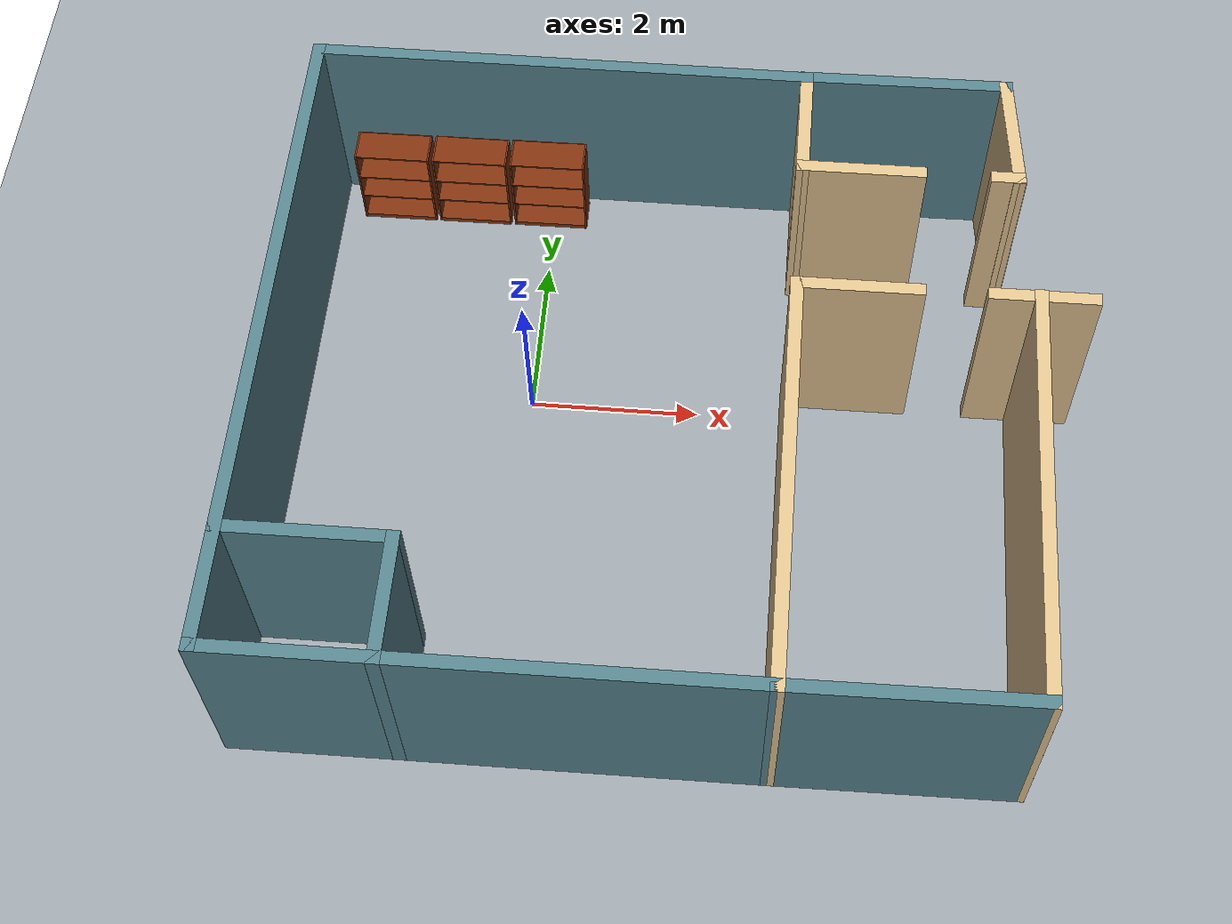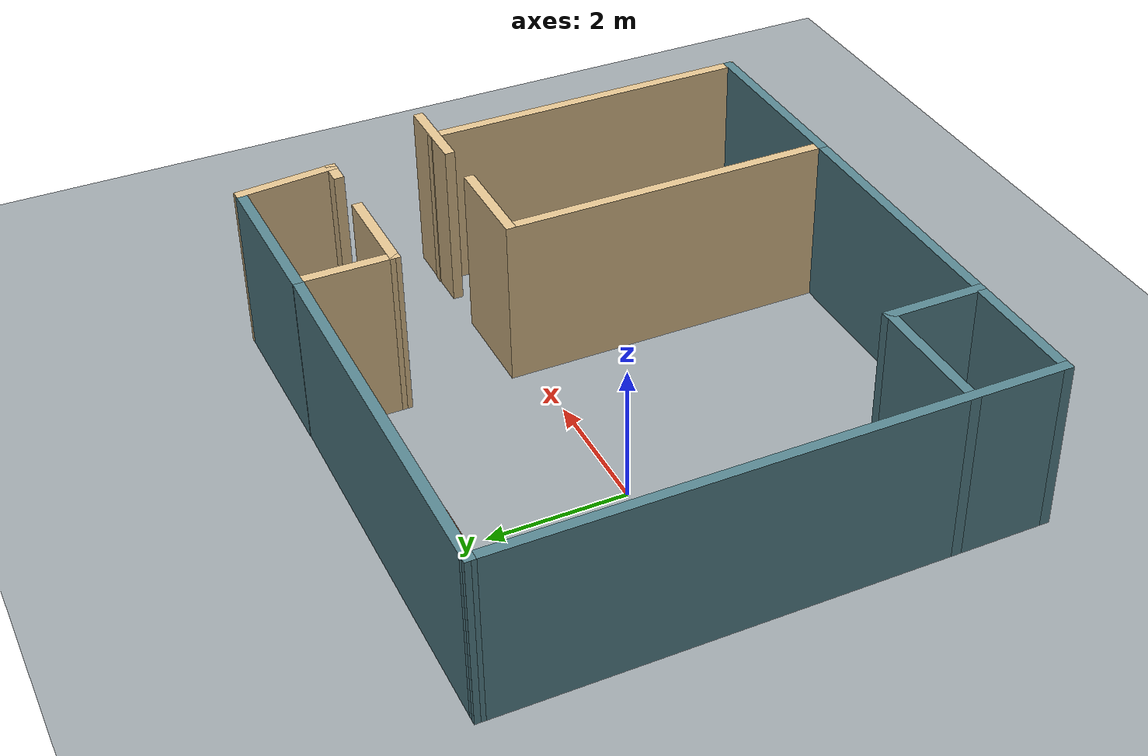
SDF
<sdf version="1.6">
 <world name="default">
  <model name="ground_plane_0">
   <static>1</static>
   <link name="link">
    <collision name="collision">
     <geometry><plane><normal>0 0 1</normal><size>100 100</size></plane></geometry>
     <surface><friction><ode><mu>100</mu><mu2>50</mu2></ode></friction></surface>
    </collision>
    <visual name="visual">
     <cast_shadows>0</cast_shadows>
     <geometry><plane><normal>0 0 1</normal><size>100 100</size></plane></geometry>
     <material>
      <ambient>0.42 0.44 0.46 1</ambient>
      <diffuse>0.62 0.65 0.67 1</diffuse>
      <specular>0.08 0.08 0.08 1</specular>
      <emissive>0 0 0 1</emissive>
     </material>
    </visual>
    <velocity_decay><linear>0</linear><angular>0</angular></velocity_decay>
   </link>
   <pose>0.497681 0 0 0 -0 0</pose>
  </model>
  <model name="inco_planta_baja_0">
   <link name="Wall_10">
    <pose>-3.93462 3.232 0 0 0 -1.5727</pose>
    <visual name="Wall_10_Visual">
     <pose>0 0 1.25 0 -0 0</pose>
     <geometry><box><size>1.48163 0.15 2.5</size></box></geometry>
     <material>
      <ambient>0.55 0.48 0.36 1</ambient>
      <diffuse>0.88 0.76 0.56 1</diffuse>
      <specular>0.05 0.05 0.05 1</specular>
      <emissive>0 0 0 1</emissive>
     </material>
    </visual>
    <collision name="Wall_10_Collision">
     <pose>0 0 1.25 0 -0 0</pose>
     <geometry><box><size>1.48163 0.15 2.5</size></box></geometry>
     <surface>
      <friction>
       <ode><mu>1</mu><mu2>1</mu2><fdir1>0 0 0</fdir1><slip1>0</slip1><slip2>0</slip2></ode>
       <torsional>
        <coefficient>1</coefficient>
        <patch_radius>0</patch_radius>
        <surface_radius>0</surface_radius>
        <use_patch_radius>1</use_patch_radius>
        <ode><slip>0</slip></ode>
       </torsional>
      </friction>
      <bounce><restitution_coefficient>0</restitution_coefficient><threshold>1e+06</threshold></bounce>
      <contact>
       <collide_without_contact>0</collide_without_contact>
       <collide_without_contact_bitmask>1</collide_without_contact_bitmask>
       <collide_bitmask>1</collide_bitmask>
       <ode>
        <soft_cfm>0</soft_cfm>
        <soft_erp>0.2</soft_erp>
        <kp>1e+13</kp>
        <kd>1</kd>
        <max_vel>0.01</max_vel>
        <min_depth>0</min_depth>
       </ode>
       <bullet>
        <split_impulse>1</split_impulse>
        <split_impulse_penetration_threshold>-0.01</split_impulse_penetration_threshold>
        <soft_cfm>0</soft_cfm>
        <soft_erp>0.2</soft_erp>
        <kp>1e+13</kp>
        <kd>1</kd>
       </bullet>
      </contact>
     </surface>
    </collision>
   </link>
   <link name="Wall_12">
    <pose>-3.26089 2.56618 0 0 -0 0</pose>
    <visual name="Wall_12_Visual">
     <pose>0 0 1.25 0 -0 0</pose>
     <geometry><box><size>1.5 0.15 2.5</size></box></geometry>
     <material>
      <ambient>0.55 0.48 0.36 1</ambient>
      <diffuse>0.88 0.76 0.56 1</diffuse>
      <specular>0.05 0.05 0.05 1</specular>
      <emissive>0 0 0 1</emissive>
     </material>
    </visual>
    <collision name="Wall_12_Collision">
     <pose>0 0 1.25 0 -0 0</pose>
     <geometry><box><size>1.5 0.15 2.5</size></box></geometry>
     <surface>
      <friction>
       <ode><mu>1</mu><mu2>1</mu2><fdir1>0 0 0</fdir1><slip1>0</slip1><slip2>0</slip2></ode>
       <torsional>
        <coefficient>1</coefficient>
        <patch_radius>0</patch_radius>
        <surface_radius>0</surface_radius>
        <use_patch_radius>1</use_patch_radius>
        <ode><slip>0</slip></ode>
       </torsional>
      </friction>
      <bounce><restitution_coefficient>0</restitution_coefficient><threshold>1e+06</threshold></bounce>
      <contact>
       <collide_without_contact>0</collide_without_contact>
       <collide_without_contact_bitmask>1</collide_without_contact_bitmask>
       <collide_bitmask>1</collide_bitmask>
       <ode>
        <soft_cfm>0</soft_cfm>
        <soft_erp>0.2</soft_erp>
        <kp>1e+13</kp>
        <kd>1</kd>
        <max_vel>0.01</max_vel>
        <min_depth>0</min_depth>
       </ode>
       <bullet>
        <split_impulse>1</split_impulse>
        <split_impulse_penetration_threshold>-0.01</split_impulse_penetration_threshold>
        <soft_cfm>0</soft_cfm>
        <soft_erp>0.2</soft_erp>
        <kp>1e+13</kp>
        <kd>1</kd>
       </bullet>
      </contact>
     </surface>
    </collision>
   </link>
   <link name="Wall_129">
    <pose>-1.23779 -1.49163 0 0 0 -1.5708</pose>
    <visual name="Wall_129_Visual">
     <pose>0 0 1.25 0 -0 0</pose>
     <geometry><box><size>5 0.15 2.5</size></box></geometry>
     <material>
      <ambient>0.55 0.48 0.36 1</ambient>
      <diffuse>0.88 0.76 0.56 1</diffuse>
      <specular>0.05 0.05 0.05 1</specular>
      <emissive>0 0 0 1</emissive>
     </material>
    </visual>
    <collision name="Wall_129_Collision">
     <pose>0 0 1.25 0 -0 0</pose>
     <geometry><box><size>5 0.15 2.5</size></box></geometry>
     <surface>
      <friction>
       <ode><mu>1</mu><mu2>1</mu2><fdir1>0 0 0</fdir1><slip1>0</slip1><slip2>0</slip2></ode>
       <torsional>
        <coefficient>1</coefficient>
        <patch_radius>0</patch_radius>
        <surface_radius>0</surface_radius>
        <use_patch_radius>1</use_patch_radius>
        <ode><slip>0</slip></ode>
       </torsional>
      </friction>
      <bounce><restitution_coefficient>0</restitution_coefficient><threshold>1e+06</threshold></bounce>
      <contact>
       <collide_without_contact>0</collide_without_contact>
       <collide_without_contact_bitmask>1</collide_without_contact_bitmask>
       <collide_bitmask>1</collide_bitmask>
       <ode>
        <soft_cfm>0</soft_cfm>
        <soft_erp>0.2</soft_erp>
        <kp>1e+13</kp>
        <kd>1</kd>
        <max_vel>0.01</max_vel>
        <min_depth>0</min_depth>
       </ode>
       <bullet>
        <split_impulse>1</split_impulse>
        <split_impulse_penetration_threshold>-0.01</split_impulse_penetration_threshold>
        <soft_cfm>0</soft_cfm>
        <soft_erp>0.2</soft_erp>
        <kp>1e+13</kp>
        <kd>1</kd>
       </bullet>
      </contact>
     </surface>
    </collision>
   </link>
   <link name="Wall_130">
    <pose>-2.58684 -3.92522 0 0 0 -3.13522</pose>
    <visual name="Wall_130_Visual">
     <pose>0 0 1.25 0 -0 0</pose>
     <geometry><box><size>2.84815 0.15 2.5</size></box></geometry>
     <material>
      <ambient>0.22 0.31 0.34 1</ambient>
      <diffuse>0.34 0.52 0.56 1</diffuse>
      <specular>0.05 0.05 0.05 1</specular>
      <emissive>0 0 0 1</emissive>
     </material>
    </visual>
    <collision name="Wall_130_Collision">
     <pose>0 0 1.25 0 -0 0</pose>
     <geometry><box><size>2.84815 0.15 2.5</size></box></geometry>
     <surface>
      <friction>
       <ode><mu>1</mu><mu2>1</mu2><fdir1>0 0 0</fdir1><slip1>0</slip1><slip2>0</slip2></ode>
       <torsional>
        <coefficient>1</coefficient>
        <patch_radius>0</patch_radius>
        <surface_radius>0</surface_radius>
        <use_patch_radius>1</use_patch_radius>
        <ode><slip>0</slip></ode>
       </torsional>
      </friction>
      <bounce><restitution_coefficient>0</restitution_coefficient><threshold>1e+06</threshold></bounce>
      <contact>
       <collide_without_contact>0</collide_without_contact>
       <collide_without_contact_bitmask>1</collide_without_contact_bitmask>
       <collide_bitmask>1</collide_bitmask>
       <ode>
        <soft_cfm>0</soft_cfm>
        <soft_erp>0.2</soft_erp>
        <kp>1e+13</kp>
        <kd>1</kd>
        <max_vel>0.01</max_vel>
        <min_depth>0</min_depth>
       </ode>
       <bullet>
        <split_impulse>1</split_impulse>
        <split_impulse_penetration_threshold>-0.01</split_impulse_penetration_threshold>
        <soft_cfm>0</soft_cfm>
        <soft_erp>0.2</soft_erp>
        <kp>1e+13</kp>
        <kd>1</kd>
       </bullet>
      </contact>
     </surface>
    </collision>
   </link>
   <link name="Wall_139">
    <pose>-2.75835 3.91357 0 0 -0 0.008489</pose>
    <visual name="Wall_139_Visual">
     <pose>0 0 1.25 0 -0 0</pose>
     <geometry><box><size>2.50008 0.15 2.5</size></box></geometry>
     <material>
      <ambient>0.22 0.31 0.34 1</ambient>
      <diffuse>0.34 0.52 0.56 1</diffuse>
      <specular>0.05 0.05 0.05 1</specular>
      <emissive>0 0 0 1</emissive>
     </material>
    </visual>
    <collision name="Wall_139_Collision">
     <pose>0 0 1.25 0 -0 0</pose>
     <geometry><box><size>2.50008 0.15 2.5</size></box></geometry>
     <surface>
      <friction>
       <ode><mu>1</mu><mu2>1</mu2><fdir1>0 0 0</fdir1><slip1>0</slip1><slip2>0</slip2></ode>
       <torsional>
        <coefficient>1</coefficient>
        <patch_radius>0</patch_radius>
        <surface_radius>0</surface_radius>
        <use_patch_radius>1</use_patch_radius>
        <ode><slip>0</slip></ode>
       </torsional>
      </friction>
      <bounce><restitution_coefficient>0</restitution_coefficient><threshold>1e+06</threshold></bounce>
      <contact>
       <collide_without_contact>0</collide_without_contact>
       <collide_without_contact_bitmask>1</collide_without_contact_bitmask>
       <collide_bitmask>1</collide_bitmask>
       <ode>
        <soft_cfm>0</soft_cfm>
        <soft_erp>0.2</soft_erp>
        <kp>1e+13</kp>
        <kd>1</kd>
        <max_vel>0.01</max_vel>
        <min_depth>0</min_depth>
       </ode>
       <bullet>
        <split_impulse>1</split_impulse>
        <split_impulse_penetration_threshold>-0.01</split_impulse_penetration_threshold>
        <soft_cfm>0</soft_cfm>
        <soft_erp>0.2</soft_erp>
        <kp>1e+13</kp>
        <kd>1</kd>
       </bullet>
      </contact>
     </surface>
    </collision>
   </link>
   <link name="Wall_149">
    <pose>-1.51651 3.24289 0 0 0 -1.47291</pose>
    <visual name="Wall_149_Visual">
     <pose>0 0 1.25 0 -0 0</pose>
     <geometry><box><size>1.51786 0.15 2.5</size></box></geometry>
     <material>
      <ambient>0.55 0.48 0.36 1</ambient>
      <diffuse>0.88 0.76 0.56 1</diffuse>
      <specular>0.05 0.05 0.05 1</specular>
      <emissive>0 0 0 1</emissive>
     </material>
    </visual>
    <collision name="Wall_149_Collision">
     <pose>0 0 1.25 0 -0 0</pose>
     <geometry><box><size>1.51786 0.15 2.5</size></box></geometry>
     <surface>
      <friction>
       <ode><mu>1</mu><mu2>1</mu2><fdir1>0 0 0</fdir1><slip1>0</slip1><slip2>0</slip2></ode>
       <torsional>
        <coefficient>1</coefficient>
        <patch_radius>0</patch_radius>
        <surface_radius>0</surface_radius>
        <use_patch_radius>1</use_patch_radius>
        <ode><slip>0</slip></ode>
       </torsional>
      </friction>
      <bounce><restitution_coefficient>0</restitution_coefficient><threshold>1e+06</threshold></bounce>
      <contact>
       <collide_without_contact>0</collide_without_contact>
       <collide_without_contact_bitmask>1</collide_without_contact_bitmask>
       <collide_bitmask>1</collide_bitmask>
       <ode>
        <soft_cfm>0</soft_cfm>
        <soft_erp>0.2</soft_erp>
        <kp>1e+13</kp>
        <kd>1</kd>
        <max_vel>0.01</max_vel>
        <min_depth>0</min_depth>
       </ode>
       <bullet>
        <split_impulse>1</split_impulse>
        <split_impulse_penetration_threshold>-0.01</split_impulse_penetration_threshold>
        <soft_cfm>0</soft_cfm>
        <soft_erp>0.2</soft_erp>
        <kp>1e+13</kp>
        <kd>1</kd>
       </bullet>
      </contact>
     </surface>
    </collision>
   </link>
   <link name="Wall_15">
    <pose>-7.93589 -3.25882 0 0 -0 1.5708</pose>
    <visual name="Wall_15_Visual">
     <pose>0 0 1.25 0 -0 0</pose>
     <geometry><box><size>1.5 0.15 2.5</size></box></geometry>
     <material>
      <ambient>0.22 0.31 0.34 1</ambient>
      <diffuse>0.34 0.52 0.56 1</diffuse>
      <specular>0.05 0.05 0.05 1</specular>
      <emissive>0 0 0 1</emissive>
     </material>
    </visual>
    <collision name="Wall_15_Collision">
     <pose>0 0 1.25 0 -0 0</pose>
     <geometry><box><size>1.5 0.15 2.5</size></box></geometry>
     <surface>
      <friction>
       <ode><mu>1</mu><mu2>1</mu2><fdir1>0 0 0</fdir1><slip1>0</slip1><slip2>0</slip2></ode>
       <torsional>
        <coefficient>1</coefficient>
        <patch_radius>0</patch_radius>
        <surface_radius>0</surface_radius>
        <use_patch_radius>1</use_patch_radius>
        <ode><slip>0</slip></ode>
       </torsional>
      </friction>
      <bounce><restitution_coefficient>0</restitution_coefficient><threshold>1e+06</threshold></bounce>
      <contact>
       <collide_without_contact>0</collide_without_contact>
       <collide_without_contact_bitmask>1</collide_without_contact_bitmask>
       <collide_bitmask>1</collide_bitmask>
       <ode>
        <soft_cfm>0</soft_cfm>
        <soft_erp>0.2</soft_erp>
        <kp>1e+13</kp>
        <kd>1</kd>
        <max_vel>0.01</max_vel>
        <min_depth>0</min_depth>
       </ode>
       <bullet>
        <split_impulse>1</split_impulse>
        <split_impulse_penetration_threshold>-0.01</split_impulse_penetration_threshold>
        <soft_cfm>0</soft_cfm>
        <soft_erp>0.2</soft_erp>
        <kp>1e+13</kp>
        <kd>1</kd>
       </bullet>
      </contact>
     </surface>
    </collision>
   </link>
   <link name="Wall_16">
    <pose>-8.86089 -2.58382 0 0 -0 3.14159</pose>
    <visual name="Wall_16_Visual">
     <pose>0 0 1.25 0 -0 0</pose>
     <geometry><box><size>2 0.15 2.5</size></box></geometry>
     <material>
      <ambient>0.22 0.31 0.34 1</ambient>
      <diffuse>0.34 0.52 0.56 1</diffuse>
      <specular>0.05 0.05 0.05 1</specular>
      <emissive>0 0 0 1</emissive>
     </material>
    </visual>
    <collision name="Wall_16_Collision">
     <pose>0 0 1.25 0 -0 0</pose>
     <geometry><box><size>2 0.15 2.5</size></box></geometry>
     <surface>
      <friction>
       <ode><mu>1</mu><mu2>1</mu2><fdir1>0 0 0</fdir1><slip1>0</slip1><slip2>0</slip2></ode>
       <torsional>
        <coefficient>1</coefficient>
        <patch_radius>0</patch_radius>
        <surface_radius>0</surface_radius>
        <use_patch_radius>1</use_patch_radius>
        <ode><slip>0</slip></ode>
       </torsional>
      </friction>
      <bounce><restitution_coefficient>0</restitution_coefficient><threshold>1e+06</threshold></bounce>
      <contact>
       <collide_without_contact>0</collide_without_contact>
       <collide_without_contact_bitmask>1</collide_without_contact_bitmask>
       <collide_bitmask>1</collide_bitmask>
       <ode>
        <soft_cfm>0</soft_cfm>
        <soft_erp>0.2</soft_erp>
        <kp>1e+13</kp>
        <kd>1</kd>
        <max_vel>0.01</max_vel>
        <min_depth>0</min_depth>
       </ode>
       <bullet>
        <split_impulse>1</split_impulse>
        <split_impulse_penetration_threshold>-0.01</split_impulse_penetration_threshold>
        <soft_cfm>0</soft_cfm>
        <soft_erp>0.2</soft_erp>
        <kp>1e+13</kp>
        <kd>1</kd>
       </bullet>
      </contact>
     </surface>
    </collision>
   </link>
   <link name="Wall_18">
    <pose>-1.57468 2.56224 0 0 -0 3.14159</pose>
    <visual name="Wall_18_Visual">
     <pose>0 0 1.25 0 -0 0</pose>
     <geometry><box><size>0.4 0.15 2.5</size></box></geometry>
     <material>
      <ambient>0.55 0.48 0.36 1</ambient>
      <diffuse>0.88 0.76 0.56 1</diffuse>
      <specular>0.05 0.05 0.05 1</specular>
      <emissive>0 0 0 1</emissive>
     </material>
    </visual>
    <collision name="Wall_18_Collision">
     <pose>0 0 1.25 0 -0 0</pose>
     <geometry><box><size>0.4 0.15 2.5</size></box></geometry>
     <surface>
      <friction>
       <ode><mu>1</mu><mu2>1</mu2><fdir1>0 0 0</fdir1><slip1>0</slip1><slip2>0</slip2></ode>
       <torsional>
        <coefficient>1</coefficient>
        <patch_radius>0</patch_radius>
        <surface_radius>0</surface_radius>
        <use_patch_radius>1</use_patch_radius>
        <ode><slip>0</slip></ode>
       </torsional>
      </friction>
      <bounce><restitution_coefficient>0</restitution_coefficient><threshold>1e+06</threshold></bounce>
      <contact>
       <collide_without_contact>0</collide_without_contact>
       <collide_without_contact_bitmask>1</collide_without_contact_bitmask>
       <collide_bitmask>1</collide_bitmask>
       <ode>
        <soft_cfm>0</soft_cfm>
        <soft_erp>0.2</soft_erp>
        <kp>1e+13</kp>
        <kd>1</kd>
        <max_vel>0.01</max_vel>
        <min_depth>0</min_depth>
       </ode>
       <bullet>
        <split_impulse>1</split_impulse>
        <split_impulse_penetration_threshold>-0.01</split_impulse_penetration_threshold>
        <soft_cfm>0</soft_cfm>
        <soft_erp>0.2</soft_erp>
        <kp>1e+13</kp>
        <kd>1</kd>
       </bullet>
      </contact>
     </surface>
    </collision>
   </link>
   <link name="Wall_2">
    <pose>-9.78589 -0.008816 0 0 -0 1.5708</pose>
    <visual name="Wall_2_Visual">
     <pose>0 0 1.25 0 -0 0</pose>
     <geometry><box><size>8 0.15 2.5</size></box></geometry>
     <material>
      <ambient>0.22 0.31 0.34 1</ambient>
      <diffuse>0.34 0.52 0.56 1</diffuse>
      <specular>0.05 0.05 0.05 1</specular>
      <emissive>0 0 0 1</emissive>
     </material>
    </visual>
    <collision name="Wall_2_Collision">
     <pose>0 0 1.25 0 -0 0</pose>
     <geometry><box><size>8 0.15 2.5</size></box></geometry>
     <surface>
      <friction>
       <ode><mu>1</mu><mu2>1</mu2><fdir1>0 0 0</fdir1><slip1>0</slip1><slip2>0</slip2></ode>
       <torsional>
        <coefficient>1</coefficient>
        <patch_radius>0</patch_radius>
        <surface_radius>0</surface_radius>
        <use_patch_radius>1</use_patch_radius>
        <ode><slip>0</slip></ode>
       </torsional>
      </friction>
      <bounce><restitution_coefficient>0</restitution_coefficient><threshold>1e+06</threshold></bounce>
      <contact>
       <collide_without_contact>0</collide_without_contact>
       <collide_without_contact_bitmask>1</collide_without_contact_bitmask>
       <collide_bitmask>1</collide_bitmask>
       <ode>
        <soft_cfm>0</soft_cfm>
        <soft_erp>0.2</soft_erp>
        <kp>1e+13</kp>
        <kd>1</kd>
        <max_vel>0.01</max_vel>
        <min_depth>0</min_depth>
       </ode>
       <bullet>
        <split_impulse>1</split_impulse>
        <split_impulse_penetration_threshold>-0.01</split_impulse_penetration_threshold>
        <soft_cfm>0</soft_cfm>
        <soft_erp>0.2</soft_erp>
        <kp>1e+13</kp>
        <kd>1</kd>
       </bullet>
      </contact>
     </surface>
    </collision>
   </link>
   <link name="Wall_22">
    <pose>-1.19908 0.921667 0 0 -0 0</pose>
    <visual name="Wall_22_Visual">
     <pose>0 0 1.25 0 -0 0</pose>
     <geometry><box><size>1.25 0.15 2.5</size></box></geometry>
     <material>
      <ambient>0.55 0.48 0.36 1</ambient>
      <diffuse>0.88 0.76 0.56 1</diffuse>
      <specular>0.05 0.05 0.05 1</specular>
      <emissive>0 0 0 1</emissive>
     </material>
    </visual>
    <collision name="Wall_22_Collision">
     <pose>0 0 1.25 0 -0 0</pose>
     <geometry><box><size>1.25 0.15 2.5</size></box></geometry>
     <surface>
      <friction>
       <ode><mu>1</mu><mu2>1</mu2><fdir1>0 0 0</fdir1><slip1>0</slip1><slip2>0</slip2></ode>
       <torsional>
        <coefficient>1</coefficient>
        <patch_radius>0</patch_radius>
        <surface_radius>0</surface_radius>
        <use_patch_radius>1</use_patch_radius>
        <ode><slip>0</slip></ode>
       </torsional>
      </friction>
      <bounce><restitution_coefficient>0</restitution_coefficient><threshold>1e+06</threshold></bounce>
      <contact>
       <collide_without_contact>0</collide_without_contact>
       <collide_without_contact_bitmask>1</collide_without_contact_bitmask>
       <collide_bitmask>1</collide_bitmask>
       <ode>
        <soft_cfm>0</soft_cfm>
        <soft_erp>0.2</soft_erp>
        <kp>1e+13</kp>
        <kd>1</kd>
        <max_vel>0.01</max_vel>
        <min_depth>0</min_depth>
       </ode>
       <bullet>
        <split_impulse>1</split_impulse>
        <split_impulse_penetration_threshold>-0.01</split_impulse_penetration_threshold>
        <soft_cfm>0</soft_cfm>
        <soft_erp>0.2</soft_erp>
        <kp>1e+13</kp>
        <kd>1</kd>
       </bullet>
      </contact>
     </surface>
    </collision>
   </link>
   <link name="Wall_4">
    <pose>-6.86089 -3.93382 0 0 -0 0</pose>
    <visual name="Wall_4_Visual">
     <pose>0 0 1.25 0 -0 0</pose>
     <geometry><box><size>6 0.15 2.5</size></box></geometry>
     <material>
      <ambient>0.22 0.31 0.34 1</ambient>
      <diffuse>0.34 0.52 0.56 1</diffuse>
      <specular>0.05 0.05 0.05 1</specular>
      <emissive>0 0 0 1</emissive>
     </material>
    </visual>
    <collision name="Wall_4_Collision">
     <pose>0 0 1.25 0 -0 0</pose>
     <geometry><box><size>6 0.15 2.5</size></box></geometry>
     <surface>
      <friction>
       <ode><mu>1</mu><mu2>1</mu2><fdir1>0 0 0</fdir1><slip1>0</slip1><slip2>0</slip2></ode>
       <torsional>
        <coefficient>1</coefficient>
        <patch_radius>0</patch_radius>
        <surface_radius>0</surface_radius>
        <use_patch_radius>1</use_patch_radius>
        <ode><slip>0</slip></ode>
       </torsional>
      </friction>
      <bounce><restitution_coefficient>0</restitution_coefficient><threshold>1e+06</threshold></bounce>
      <contact>
       <collide_without_contact>0</collide_without_contact>
       <collide_without_contact_bitmask>1</collide_without_contact_bitmask>
       <collide_bitmask>1</collide_bitmask>
       <ode>
        <soft_cfm>0</soft_cfm>
        <soft_erp>0.2</soft_erp>
        <kp>1e+13</kp>
        <kd>1</kd>
        <max_vel>0.01</max_vel>
        <min_depth>0</min_depth>
       </ode>
       <bullet>
        <split_impulse>1</split_impulse>
        <split_impulse_penetration_threshold>-0.01</split_impulse_penetration_threshold>
        <soft_cfm>0</soft_cfm>
        <soft_erp>0.2</soft_erp>
        <kp>1e+13</kp>
        <kd>1</kd>
       </bullet>
      </contact>
     </surface>
    </collision>
   </link>
   <link name="Wall_6">
    <pose>-3.93589 -1.50882 0 0 -0 1.5708</pose>
    <visual name="Wall_6_Visual">
     <pose>0 0 1.25 0 -0 0</pose>
     <geometry><box><size>5 0.15 2.5</size></box></geometry>
     <material>
      <ambient>0.55 0.48 0.36 1</ambient>
      <diffuse>0.88 0.76 0.56 1</diffuse>
      <specular>0.05 0.05 0.05 1</specular>
      <emissive>0 0 0 1</emissive>
     </material>
    </visual>
    <collision name="Wall_6_Collision">
     <pose>0 0 1.25 0 -0 0</pose>
     <geometry><box><size>5 0.15 2.5</size></box></geometry>
     <surface>
      <friction>
       <ode><mu>1</mu><mu2>1</mu2><fdir1>0 0 0</fdir1><slip1>0</slip1><slip2>0</slip2></ode>
       <torsional>
        <coefficient>1</coefficient>
        <patch_radius>0</patch_radius>
        <surface_radius>0</surface_radius>
        <use_patch_radius>1</use_patch_radius>
        <ode><slip>0</slip></ode>
       </torsional>
      </friction>
      <bounce><restitution_coefficient>0</restitution_coefficient><threshold>1e+06</threshold></bounce>
      <contact>
       <collide_without_contact>0</collide_without_contact>
       <collide_without_contact_bitmask>1</collide_without_contact_bitmask>
       <collide_bitmask>1</collide_bitmask>
       <ode>
        <soft_cfm>0</soft_cfm>
        <soft_erp>0.2</soft_erp>
        <kp>1e+13</kp>
        <kd>1</kd>
        <max_vel>0.01</max_vel>
        <min_depth>0</min_depth>
       </ode>
       <bullet>
        <split_impulse>1</split_impulse>
        <split_impulse_penetration_threshold>-0.01</split_impulse_penetration_threshold>
        <soft_cfm>0</soft_cfm>
        <soft_erp>0.2</soft_erp>
        <kp>1e+13</kp>
        <kd>1</kd>
       </bullet>
      </contact>
     </surface>
    </collision>
   </link>
   <link name="Wall_7">
    <pose>-3.26089 0.916184 0 0 -0 0</pose>
    <visual name="Wall_7_Visual">
     <pose>0 0 1.25 0 -0 0</pose>
     <geometry><box><size>1.5 0.15 2.5</size></box></geometry>
     <material>
      <ambient>0.55 0.48 0.36 1</ambient>
      <diffuse>0.88 0.76 0.56 1</diffuse>
      <specular>0.05 0.05 0.05 1</specular>
      <emissive>0 0 0 1</emissive>
     </material>
    </visual>
    <collision name="Wall_7_Collision">
     <pose>0 0 1.25 0 -0 0</pose>
     <geometry><box><size>1.5 0.15 2.5</size></box></geometry>
     <surface>
      <friction>
       <ode><mu>1</mu><mu2>1</mu2><fdir1>0 0 0</fdir1><slip1>0</slip1><slip2>0</slip2></ode>
       <torsional>
        <coefficient>1</coefficient>
        <patch_radius>0</patch_radius>
        <surface_radius>0</surface_radius>
        <use_patch_radius>1</use_patch_radius>
        <ode><slip>0</slip></ode>
       </torsional>
      </friction>
      <bounce><restitution_coefficient>0</restitution_coefficient><threshold>1e+06</threshold></bounce>
      <contact>
       <collide_without_contact>0</collide_without_contact>
       <collide_without_contact_bitmask>1</collide_without_contact_bitmask>
       <collide_bitmask>1</collide_bitmask>
       <ode>
        <soft_cfm>0</soft_cfm>
        <soft_erp>0.2</soft_erp>
        <kp>1e+13</kp>
        <kd>1</kd>
        <max_vel>0.01</max_vel>
        <min_depth>0</min_depth>
       </ode>
       <bullet>
        <split_impulse>1</split_impulse>
        <split_impulse_penetration_threshold>-0.01</split_impulse_penetration_threshold>
        <soft_cfm>0</soft_cfm>
        <soft_erp>0.2</soft_erp>
        <kp>1e+13</kp>
        <kd>1</kd>
       </bullet>
      </contact>
     </surface>
    </collision>
   </link>
   <link name="Wall_9">
    <pose>-6.85962 3.907 0 0 0 -0.003139</pose>
    <visual name="Wall_9_Visual">
     <pose>0 0 1.25 0 -0 0</pose>
     <geometry><box><size>6.00254 0.15 2.5</size></box></geometry>
     <material>
      <ambient>0.22 0.31 0.34 1</ambient>
      <diffuse>0.34 0.52 0.56 1</diffuse>
      <specular>0.05 0.05 0.05 1</specular>
      <emissive>0 0 0 1</emissive>
     </material>
    </visual>
    <collision name="Wall_9_Collision">
     <pose>0 0 1.25 0 -0 0</pose>
     <geometry><box><size>6.00254 0.15 2.5</size></box></geometry>
     <surface>
      <friction>
       <ode><mu>1</mu><mu2>1</mu2><fdir1>0 0 0</fdir1><slip1>0</slip1><slip2>0</slip2></ode>
       <torsional>
        <coefficient>1</coefficient>
        <patch_radius>0</patch_radius>
        <surface_radius>0</surface_radius>
        <use_patch_radius>1</use_patch_radius>
        <ode><slip>0</slip></ode>
       </torsional>
      </friction>
      <bounce><restitution_coefficient>0</restitution_coefficient><threshold>1e+06</threshold></bounce>
      <contact>
       <collide_without_contact>0</collide_without_contact>
       <collide_without_contact_bitmask>1</collide_without_contact_bitmask>
       <collide_bitmask>1</collide_bitmask>
       <ode>
        <soft_cfm>0</soft_cfm>
        <soft_erp>0.2</soft_erp>
        <kp>1e+13</kp>
        <kd>1</kd>
        <max_vel>0.01</max_vel>
        <min_depth>0</min_depth>
       </ode>
       <bullet>
        <split_impulse>1</split_impulse>
        <split_impulse_penetration_threshold>-0.01</split_impulse_penetration_threshold>
        <soft_cfm>0</soft_cfm>
        <soft_erp>0.2</soft_erp>
        <kp>1e+13</kp>
        <kd>1</kd>
       </bullet>
      </contact>
     </surface>
    </collision>
   </link>
   <static>1</static>
   <pose>6.99641 -0.640898 0 0 -0 0</pose>
  </model>
  <model name="bookshelf">
   <static>1</static>
   <link name="link">
    <inertial><mass>1</mass></inertial>
    <collision name="back">
     <pose>0 0.005 0.6 0 -0 0</pose>
     <geometry><box><size>0.9 0.01 1.2</size></box></geometry>
    </collision>
    <visual name="visual1">
     <pose>0 0.005 0.6 0 -0 0</pose>
     <geometry><box><size>0.9 0.01 1.2</size></box></geometry>
     <material>
      <ambient>0.18 0.07 0.025 1</ambient>
      <diffuse>0.50 0.20 0.06 1</diffuse>
      <specular>0.10 0.08 0.06 1</specular>
      <emissive>0 0 0 1</emissive>
     </material>
    </visual>
    <collision name="left_side">
     <pose>0.45 -0.195 0.6 0 -0 0</pose>
     <geometry><box><size>0.02 0.4 1.2</size></box></geometry>
    </collision>
    <visual name="visual2">
     <pose>0.45 -0.195 0.6 0 -0 0</pose>
     <geometry><box><size>0.02 0.4 1.2</size></box></geometry>
     <material>
      <ambient>0.18 0.07 0.025 1</ambient>
      <diffuse>0.50 0.20 0.06 1</diffuse>
      <specular>0.10 0.08 0.06 1</specular>
      <emissive>0 0 0 1</emissive>
     </material>
    </visual>
    <collision name="right_side">
     <pose>-0.45 -0.195 0.6 0 -0 0</pose>
     <geometry><box><size>0.02 0.4 1.2</size></box></geometry>
    </collision>
    <visual name="visual3">
     <pose>-0.45 -0.195 0.6 0 -0 0</pose>
     <geometry><box><size>0.02 0.4 1.2</size></box></geometry>
     <material>
      <ambient>0.18 0.07 0.025 1</ambient>
      <diffuse>0.50 0.20 0.06 1</diffuse>
      <specular>0.10 0.08 0.06 1</specular>
      <emissive>0 0 0 1</emissive>
     </material>
    </visual>
    <collision name="bottom">
     <pose>0 -0.195 0.03 0 -0 0</pose>
     <geometry><box><size>0.88 0.4 0.06</size></box></geometry>
    </collision>
    <visual name="visual4">
     <pose>0 -0.195 0.03 0 -0 0</pose>
     <geometry><box><size>0.88 0.4 0.06</size></box></geometry>
     <material>
      <ambient>0.18 0.07 0.025 1</ambient>
      <diffuse>0.50 0.20 0.06 1</diffuse>
      <specular>0.10 0.08 0.06 1</specular>
      <emissive>0 0 0 1</emissive>
     </material>
    </visual>
    <collision name="top">
     <pose>0 -0.195 1.19 0 -0 0</pose>
     <geometry><box><size>0.88 0.4 0.02</size></box></geometry>
    </collision>
    <visual name="visual5">
     <pose>0 -0.195 1.19 0 -0 0</pose>
     <geometry><box><size>0.88 0.4 0.02</size></box></geometry>
     <material>
      <ambient>0.18 0.07 0.025 1</ambient>
      <diffuse>0.50 0.20 0.06 1</diffuse>
      <specular>0.10 0.08 0.06 1</specular>
      <emissive>0 0 0 1</emissive>
     </material>
    </visual>
    <collision name="low_shelf">
     <pose>0 -0.195 0.43 0 -0 0</pose>
     <geometry><box><size>0.88 0.4 0.02</size></box></geometry>
    </collision>
    <visual name="visual6">
     <pose>0 -0.195 0.43 0 -0 0</pose>
     <geometry><box><size>0.88 0.4 0.02</size></box></geometry>
     <material>
      <ambient>0.18 0.07 0.025 1</ambient>
      <diffuse>0.50 0.20 0.06 1</diffuse>
      <specular>0.10 0.08 0.06 1</specular>
      <emissive>0 0 0 1</emissive>
     </material>
    </visual>
    <collision name="high_shelf">
     <pose>0 -0.195 0.8 0 -0 0</pose>
     <geometry><box><size>0.88 0.4 0.02</size></box></geometry>
    </collision>
    <visual name="visual7">
     <pose>0 -0.195 0.8 0 -0 0</pose>
     <geometry><box><size>0.88 0.4 0.02</size></box></geometry>
     <material>
      <ambient>0.18 0.07 0.025 1</ambient>
      <diffuse>0.50 0.20 0.06 1</diffuse>
      <specular>0.10 0.08 0.06 1</specular>
      <emissive>0 0 0 1</emissive>
     </material>
    </visual>
   </link>
   <pose>-1.98399 3.08859 0 0 -0 0</pose>
  </model>
  <model name="bookshelf_0">
   <static>1</static>
   <link name="link">
    <inertial><mass>1</mass></inertial>
    <collision name="back">
     <pose>0 0.005 0.6 0 -0 0</pose>
     <geometry><box><size>0.9 0.01 1.2</size></box></geometry>
    </collision>
    <visual name="visual1">
     <pose>0 0.005 0.6 0 -0 0</pose>
     <geometry><box><size>0.9 0.01 1.2</size></box></geometry>
     <material>
      <ambient>0.18 0.07 0.025 1</ambient>
      <diffuse>0.50 0.20 0.06 1</diffuse>
      <specular>0.10 0.08 0.06 1</specular>
      <emissive>0 0 0 1</emissive>
     </material>
    </visual>
    <collision name="left_side">
     <pose>0.45 -0.195 0.6 0 -0 0</pose>
     <geometry><box><size>0.02 0.4 1.2</size></box></geometry>
    </collision>
    <visual name="visual2">
     <pose>0.45 -0.195 0.6 0 -0 0</pose>
     <geometry><box><size>0.02 0.4 1.2</size></box></geometry>
     <material>
      <ambient>0.18 0.07 0.025 1</ambient>
      <diffuse>0.50 0.20 0.06 1</diffuse>
      <specular>0.10 0.08 0.06 1</specular>
      <emissive>0 0 0 1</emissive>
     </material>
    </visual>
    <collision name="right_side">
     <pose>-0.45 -0.195 0.6 0 -0 0</pose>
     <geometry><box><size>0.02 0.4 1.2</size></box></geometry>
    </collision>
    <visual name="visual3">
     <pose>-0.45 -0.195 0.6 0 -0 0</pose>
     <geometry><box><size>0.02 0.4 1.2</size></box></geometry>
     <material>
      <ambient>0.18 0.07 0.025 1</ambient>
      <diffuse>0.50 0.20 0.06 1</diffuse>
      <specular>0.10 0.08 0.06 1</specular>
      <emissive>0 0 0 1</emissive>
     </material>
    </visual>
    <collision name="bottom">
     <pose>0 -0.195 0.03 0 -0 0</pose>
     <geometry><box><size>0.88 0.4 0.06</size></box></geometry>
    </collision>
    <visual name="visual4">
     <pose>0 -0.195 0.03 0 -0 0</pose>
     <geometry><box><size>0.88 0.4 0.06</size></box></geometry>
     <material>
      <ambient>0.18 0.07 0.025 1</ambient>
      <diffuse>0.50 0.20 0.06 1</diffuse>
      <specular>0.10 0.08 0.06 1</specular>
      <emissive>0 0 0 1</emissive>
     </material>
    </visual>
    <collision name="top">
     <pose>0 -0.195 1.19 0 -0 0</pose>
     <geometry><box><size>0.88 0.4 0.02</size></box></geometry>
    </collision>
    <visual name="visual5">
     <pose>0 -0.195 1.19 0 -0 0</pose>
     <geometry><box><size>0.88 0.4 0.02</size></box></geometry>
     <material>
      <ambient>0.18 0.07 0.025 1</ambient>
      <diffuse>0.50 0.20 0.06 1</diffuse>
      <specular>0.10 0.08 0.06 1</specular>
      <emissive>0 0 0 1</emissive>
     </material>
    </visual>
    <collision name="low_shelf">
     <pose>0 -0.195 0.43 0 -0 0</pose>
     <geometry><box><size>0.88 0.4 0.02</size></box></geometry>
    </collision>
    <visual name="visual6">
     <pose>0 -0.195 0.43 0 -0 0</pose>
     <geometry><box><size>0.88 0.4 0.02</size></box></geometry>
     <material>
      <ambient>0.18 0.07 0.025 1</ambient>
      <diffuse>0.50 0.20 0.06 1</diffuse>
      <specular>0.10 0.08 0.06 1</specular>
      <emissive>0 0 0 1</emissive>
     </material>
    </visual>
    <collision name="high_shelf">
     <pose>0 -0.195 0.8 0 -0 0</pose>
     <geometry><box><size>0.88 0.4 0.02</size></box></geometry>
    </collision>
    <visual name="visual7">
     <pose>0 -0.195 0.8 0 -0 0</pose>
     <geometry><box><size>0.88 0.4 0.02</size></box></geometry>
     <material>
      <ambient>0.18 0.07 0.025 1</ambient>
      <diffuse>0.50 0.20 0.06 1</diffuse>
      <specular>0.10 0.08 0.06 1</specular>
      <emissive>0 0 0 1</emissive>
     </material>
    </visual>
   </link>
   <pose>-1.01928 3.09168 0 0 -0 0</pose>
  </model>
  <model name="bookshelf_1">
   <static>1</static>
   <link name="link">
    <inertial><mass>1</mass></inertial>
    <collision name="back">
     <pose>0 0.005 0.6 0 -0 0</pose>
     <geometry><box><size>0.9 0.01 1.2</size></box></geometry>
    </collision>
    <visual name="visual1">
     <pose>0 0.005 0.6 0 -0 0</pose>
     <geometry><box><size>0.9 0.01 1.2</size></box></geometry>
     <material>
      <ambient>0.18 0.07 0.025 1</ambient>
      <diffuse>0.50 0.20 0.06 1</diffuse>
      <specular>0.10 0.08 0.06 1</specular>
      <emissive>0 0 0 1</emissive>
     </material>
    </visual>
    <collision name="left_side">
     <pose>0.45 -0.195 0.6 0 -0 0</pose>
     <geometry><box><size>0.02 0.4 1.2</size></box></geometry>
    </collision>
    <visual name="visual2">
     <pose>0.45 -0.195 0.6 0 -0 0</pose>
     <geometry><box><size>0.02 0.4 1.2</size></box></geometry>
     <material>
      <ambient>0.18 0.07 0.025 1</ambient>
      <diffuse>0.50 0.20 0.06 1</diffuse>
      <specular>0.10 0.08 0.06 1</specular>
      <emissive>0 0 0 1</emissive>
     </material>
    </visual>
    <collision name="right_side">
     <pose>-0.45 -0.195 0.6 0 -0 0</pose>
     <geometry><box><size>0.02 0.4 1.2</size></box></geometry>
    </collision>
    <visual name="visual3">
     <pose>-0.45 -0.195 0.6 0 -0 0</pose>
     <geometry><box><size>0.02 0.4 1.2</size></box></geometry>
     <material>
      <ambient>0.18 0.07 0.025 1</ambient>
      <diffuse>0.50 0.20 0.06 1</diffuse>
      <specular>0.10 0.08 0.06 1</specular>
      <emissive>0 0 0 1</emissive>
     </material>
    </visual>
    <collision name="bottom">
     <pose>0 -0.195 0.03 0 -0 0</pose>
     <geometry><box><size>0.88 0.4 0.06</size></box></geometry>
    </collision>
    <visual name="visual4">
     <pose>0 -0.195 0.03 0 -0 0</pose>
     <geometry><box><size>0.88 0.4 0.06</size></box></geometry>
     <material>
      <ambient>0.18 0.07 0.025 1</ambient>
      <diffuse>0.50 0.20 0.06 1</diffuse>
      <specular>0.10 0.08 0.06 1</specular>
      <emissive>0 0 0 1</emissive>
     </material>
    </visual>
    <collision name="top">
     <pose>0 -0.195 1.19 0 -0 0</pose>
     <geometry><box><size>0.88 0.4 0.02</size></box></geometry>
    </collision>
    <visual name="visual5">
     <pose>0 -0.195 1.19 0 -0 0</pose>
     <geometry><box><size>0.88 0.4 0.02</size></box></geometry>
     <material>
      <ambient>0.18 0.07 0.025 1</ambient>
      <diffuse>0.50 0.20 0.06 1</diffuse>
      <specular>0.10 0.08 0.06 1</specular>
      <emissive>0 0 0 1</emissive>
     </material>
    </visual>
    <collision name="low_shelf">
     <pose>0 -0.195 0.43 0 -0 0</pose>
     <geometry><box><size>0.88 0.4 0.02</size></box></geometry>
    </collision>
    <visual name="visual6">
     <pose>0 -0.195 0.43 0 -0 0</pose>
     <geometry><box><size>0.88 0.4 0.02</size></box></geometry>
     <material>
      <ambient>0.18 0.07 0.025 1</ambient>
      <diffuse>0.50 0.20 0.06 1</diffuse>
      <specular>0.10 0.08 0.06 1</specular>
      <emissive>0 0 0 1</emissive>
     </material>
    </visual>
    <collision name="high_shelf">
     <pose>0 -0.195 0.8 0 -0 0</pose>
     <geometry><box><size>0.88 0.4 0.02</size></box></geometry>
    </collision>
    <visual name="visual7">
     <pose>0 -0.195 0.8 0 -0 0</pose>
     <geometry><box><size>0.88 0.4 0.02</size></box></geometry>
     <material>
      <ambient>0.18 0.07 0.025 1</ambient>
      <diffuse>0.50 0.20 0.06 1</diffuse>
      <specular>0.10 0.08 0.06 1</specular>
      <emissive>0 0 0 1</emissive>
     </material>
    </visual>
   </link>
   <pose>-0.05479 3.09833 0 0 -0 0</pose>
  </model>
 </world>
</sdf>
